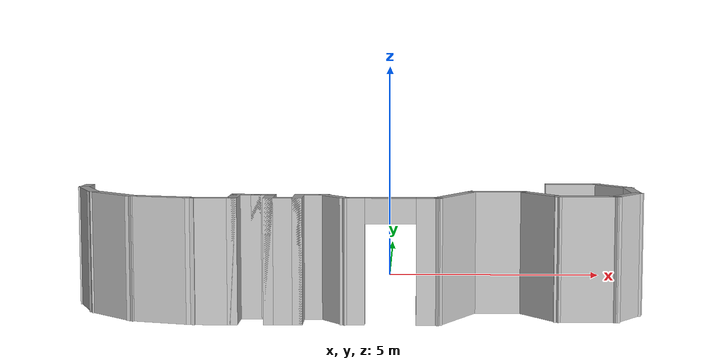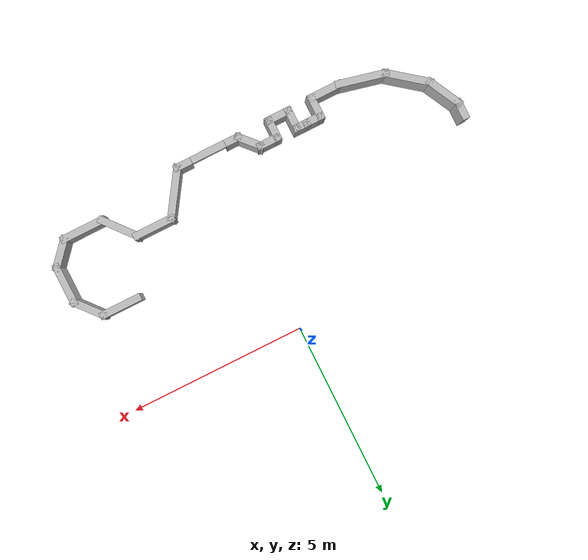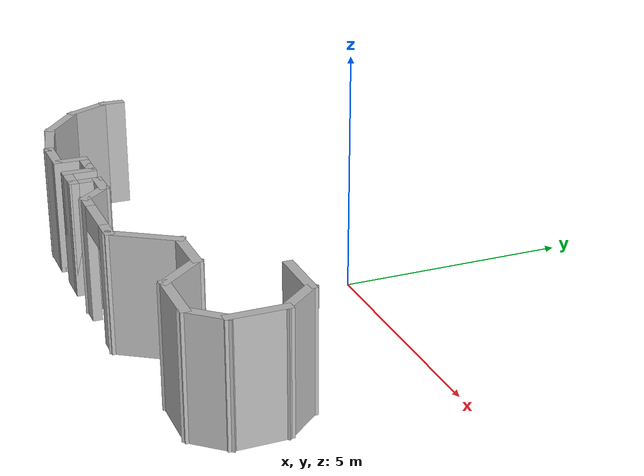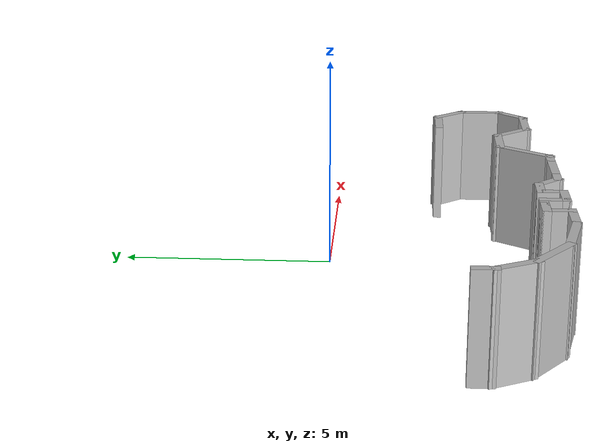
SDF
<?xml version='1.0'?>
<sdf version='1.5'>
  <model name='sample_wall3'>
    <link name='Wall_64'>
      <collision name='Wall_64_Collision'>
        <geometry>
          <box>
            <size>0.58 0.2 2.5</size>
          </box>
        </geometry>
        <pose frame=''>0 0 1.25 0 -0 0</pose>
      </collision>
      <visual name='Wall_64_Visual'>
        <pose frame=''>0 0 1.25 0 -0 0</pose>
        <geometry>
          <box>
            <size>0.58 0.2 2.5</size>
          </box>
        </geometry>
        <material>
          <script>
            <uri>model://sample_wall3/materials/scripts</uri>
            <uri>model://sample_wall3/materials/textures</uri>
            <name>tex/wall</name>
          </script>
        </material>
      </visual>
      <pose frame=''>-6.41 -3.31 0 0 0 -1.5708</pose>
    </link>
    <link name='Wall_65'>
      <collision name='Wall_65_Collision'>
        <geometry>
          <box>
            <size>1.13477 0.2 2.5</size>
          </box>
        </geometry>
        <pose frame=''>0 0 1.25 0 -0 0</pose>
      </collision>
      <visual name='Wall_65_Visual'>
        <pose frame=''>0 0 1.25 0 -0 0</pose>
        <geometry>
          <box>
            <size>1.13477 0.2 2.5</size>
          </box>
        </geometry>
        <material>
          <script>
            <uri>model://sample_wall3/materials/scripts</uri>
            <uri>model://sample_wall3/materials/textures</uri>
            <name>tex/wall</name>
          </script>
        </material>
      </visual>
      <pose frame=''>-6.195 -3.915 0 0 0 -1.0928</pose>
    </link>
    <link name='Wall_66'>
      <collision name='Wall_66_Collision'>
        <geometry>
          <box>
            <size>1.4042 0.2 2.5</size>
          </box>
        </geometry>
        <pose frame=''>0 0 1.25 0 -0 0</pose>
      </collision>
      <visual name='Wall_66_Visual'>
        <pose frame=''>0 0 1.25 0 -0 0</pose>
        <geometry>
          <box>
            <size>1.4042 0.2 2.5</size>
          </box>
        </geometry>
        <material>
          <script>
            <uri>model://sample_wall3/materials/scripts</uri> <uri>model://sample_wall3/materials/textures</uri>
            <name>tex/wall</name>
          </script>
        </material>
      </visual>
      <pose frame=''>-5.505 -4.7 0 0 0 -0.661772</pose>
    </link>
    <link name='Wall_67'>
      <collision name='Wall_67_Collision'>
        <geometry>
          <box>
            <size>1.46372 0.2 2.5</size>
          </box>
        </geometry>
        <pose frame=''>0 0 1.25 0 -0 0</pose>
      </collision>
      <visual name='Wall_67_Visual'>
        <pose frame=''>0 0 1.25 0 -0 0</pose>
        <geometry>
          <box>
            <size>1.46372 0.2 2.5</size>
          </box>
        </geometry>
        <material>
          <script>
            <uri>model://sample_wall3/materials/scripts</uri> <uri>model://sample_wall3/materials/textures</uri>
            <name>tex/wall</name>
          </script>
        </material>
      </visual>
      <pose frame=''>-4.415 -5.215 0 0 0 -0.231544</pose>
    </link>
    <link name='Wall_68'>
      <collision name='Wall_68_Collision'>
        <geometry>
          <box>
            <size>1.01 0.2 2.5</size>
          </box>
        </geometry>
        <pose frame=''>0 0 1.25 0 -0 0</pose>
      </collision>
      <visual name='Wall_68_Visual'>
        <pose frame=''>0 0 1.25 0 -0 0</pose>
        <geometry>
          <box>
            <size>1.01 0.2 2.5</size>
          </box>
        </geometry>
        <material>
          <script>
            <uri>model://sample_wall3/materials/scripts</uri> <uri>model://sample_wall3/materials/textures</uri>
            <name>tex/wall</name>
          </script>
        </material>
      </visual>
      <pose frame=''>-3.395 -5.36 0 0 -0 0</pose>
    </link>
    <link name='Wall_69'>
      <collision name='Wall_69_Collision'>
        <geometry>
          <box>
            <size>0.74 0.2 2.5</size>
          </box>
        </geometry>
        <pose frame=''>0 0 1.25 0 -0 0</pose>
      </collision>
      <visual name='Wall_69_Visual'>
        <pose frame=''>0 0 1.25 0 -0 0</pose>
        <geometry>
          <box>
            <size>0.74 0.2 2.5</size>
          </box>
        </geometry>
        <material>
          <script>
            <uri>model://sample_wall3/materials/scripts</uri> <uri>model://sample_wall3/materials/textures</uri>
            <name>tex/wall</name>
          </script>
        </material>
      </visual>
      <pose frame=''>-2.99 -5.09 0 0 -0 1.5708</pose>
    </link>
    <link name='Wall_70'>
      <collision name='Wall_70_Collision'>
        <geometry>
          <box>
            <size>0.61 0.2 2.5</size>
          </box>
        </geometry>
        <pose frame=''>0 0 1.25 0 -0 0</pose>
      </collision>
      <visual name='Wall_70_Visual'>
        <pose frame=''>0 0 1.25 0 -0 0</pose>
        <geometry>
          <box>
            <size>0.61 0.2 2.5</size>
          </box>
        </geometry>
        <material>
          <script>
            <uri>model://sample_wall3/materials/scripts</uri> <uri>model://sample_wall3/materials/textures</uri>
            <name>tex/wall</name>
          </script>
        </material>
      </visual>
      <pose frame=''>-2.785 -4.82 0 0 -0 0</pose>
    </link>
    <link name='Wall_71'>
      <collision name='Wall_71_Collision'>
        <geometry>
          <box>
            <size>0.49 0.2 2.5</size>
          </box>
        </geometry>
        <pose frame=''>0 0 1.25 0 -0 0</pose>
      </collision>
      <visual name='Wall_71_Visual'>
        <pose frame=''>0 0 1.25 0 -0 0</pose>
        <geometry>
          <box>
            <size>0.49 0.2 2.5</size>
          </box>
        </geometry>
        <material>
          <script>
            <uri>model://sample_wall3/materials/scripts</uri> <uri>model://sample_wall3/materials/textures</uri>
            <name>tex/wall</name>
          </script>
        </material>
      </visual>
      <pose frame=''>-2.435 -4.82 0 0 -0 0</pose>
    </link>
    <link name='Wall_72'>
      <collision name='Wall_72_Collision'>
        <geometry>
          <box>
            <size>0.71 0.2 2.5</size>
          </box>
        </geometry>
        <pose frame=''>0 0 1.25 0 -0 0</pose>
      </collision>
      <visual name='Wall_72_Visual'>
        <pose frame=''>0 0 1.25 0 -0 0</pose>
        <geometry>
          <box>
            <size>0.71 0.2 2.5</size>
          </box>
        </geometry>
        <material>
          <script>
            <uri>model://sample_wall3/materials/scripts</uri> <uri>model://sample_wall3/materials/textures</uri>
            <name>tex/wall</name>
          </script>
        </material>
      </visual>
      <pose frame=''>-2.29 -5.075 0 0 0 -1.5708</pose>
    </link>
    <link name='Wall_73'>
      <collision name='Wall_73_Collision'>
        <geometry>
          <box>
            <size>0.77 0.2 2.5</size>
          </box>
        </geometry>
        <pose frame=''>0 0 1.25 0 -0 0</pose>
      </collision>
      <visual name='Wall_73_Visual'>
        <pose frame=''>0 0 1.25 0 -0 0</pose>
        <geometry>
          <box>
            <size>0.77 0.2 2.5</size>
          </box>
        </geometry>
        <material>
          <script>
            <uri>model://sample_wall3/materials/scripts</uri> <uri>model://sample_wall3/materials/textures</uri>
            <name>tex/wall</name>
          </script>
        </material>
      </visual>
      <pose frame=''>-2.005 -5.33 0 0 -0 0</pose>
    </link>
    <link name='Wall_74'>
      <collision name='Wall_74_Collision'>
        <geometry>
          <box>
            <size>0.7 0.2 2.5</size>
          </box>
        </geometry>
        <pose frame=''>0 0 1.25 0 -0 0</pose>
      </collision>
      <visual name='Wall_74_Visual'>
        <pose frame=''>0 0 1.25 0 -0 0</pose>
        <geometry>
          <box>
            <size>0.7 0.2 2.5</size>
          </box>
        </geometry>
        <material>
          <script>
            <uri>model://sample_wall3/materials/scripts</uri> <uri>model://sample_wall3/materials/textures</uri>
            <name>tex/wall</name>
          </script>
        </material>
      </visual>
      <pose frame=''>-1.72 -5.08 0 0 -0 1.5708</pose>
    </link>
    <link name='Wall_75'>
      <collision name='Wall_75_Collision'>
        <geometry>
          <box>
            <size>0.7 0.2 2.5</size>
          </box>
        </geometry>
        <pose frame=''>0 0 1.25 0 -0 0</pose>
      </collision>
      <visual name='Wall_75_Visual'>
        <pose frame=''>0 0 1.25 0 -0 0</pose>
        <geometry>
          <box>
            <size>0.7 0.2 2.5</size>
          </box>
        </geometry>
        <material>
          <script>
            <uri>model://sample_wall3/materials/scripts</uri> <uri>model://sample_wall3/materials/textures</uri>
            <name>tex/wall</name>
          </script>
        </material>
      </visual>
      <pose frame=''>-1.47 -4.83 0 0 -0 0</pose>
    </link>
    <link name='Wall_76'>
      <collision name='Wall_76_Collision'>
        <geometry>
          <box>
            <size>0.837024 0.2 2.5</size>
          </box>
        </geometry>
        <pose frame=''>0 0 1.25 0 -0 0</pose>
      </collision>
      <visual name='Wall_76_Visual'>
        <pose frame=''>0 0 1.25 0 -0 0</pose>
        <geometry>
          <box>
            <size>0.837024 0.2 2.5</size>
          </box>
        </geometry>
        <material>
          <script>
            <uri>model://sample_wall3/materials/scripts</uri> <uri>model://sample_wall3/materials/textures</uri>
            <name>tex/wall</name>
          </script>
        </material>
      </visual>
      <pose frame=''>-1.005 -5.065 0 0 0 -0.829813</pose>
    </link>
    <link name='Wall_77'>
      <pose frame=''>0.11 -5.3 0 0 -0 0</pose>
      <visual name='Wall_77_Visual_0'>
        <pose frame=''>-0.755 0 1.25 0 -0 0</pose>
        <geometry>
          <box>
            <size>0.49 0.2 2.5</size>
          </box>
        </geometry>
        <material>
          <script>
            <uri>model://sample_wall3/materials/scripts</uri> <uri>model://sample_wall3/materials/textures</uri>
            <name>tex/wall</name>
          </script>
        </material>
      </visual>
      <collision name='Wall_77_Collision_0'>
        <geometry>
          <box>
            <size>0.49 0.2 2.5</size>
          </box>
        </geometry>
        <pose frame=''>-0.755 0 1.25 0 -0 0</pose>
      </collision>
      <visual name='Wall_77_Visual_1'>
        <pose frame=''>0.745 0 1.25 0 -0 0</pose>
        <geometry>
          <box>
            <size>0.51 0.2 2.5</size>
          </box>
        </geometry>
        <material>
          <script>
            <uri>model://sample_wall3/materials/scripts</uri> <uri>model://sample_wall3/materials/textures</uri>
            <name>tex/wall</name>
          </script>
        </material>
      </visual>
      <collision name='Wall_77_Collision_1'>
        <geometry>
          <box>
            <size>0.51 0.2 2.5</size>
          </box>
        </geometry>
        <pose frame=''>0.745 0 1.25 0 -0 0</pose>
      </collision>
      <visual name='Wall_77_Visual_2'>
        <pose frame=''>-0.01 0 2.25 0 -0 0</pose>
        <geometry>
          <box>
            <size>1 0.2 0.5</size>
          </box>
        </geometry>
        <material>
          <script>
            <uri>model://sample_wall3/materials/scripts</uri> <uri>model://sample_wall3/materials/textures</uri>
            <name>tex/wall</name>
          </script>
        </material>
      </visual>
      <collision name='Wall_77_Collision_2'>
        <geometry>
          <box>
            <size>1 0.2 0.5</size>
          </box>
        </geometry>
        <pose frame=''>-0.01 0 2.25 0 -0 0</pose>
      </collision>
    </link>
    <link name='Wall_78'>
      <collision name='Wall_78_Collision'>
        <geometry>
          <box>
            <size>1.55625 0.2 2.5</size>
          </box>
        </geometry>
        <pose frame=''>0 0 1.25 0 -0 0</pose>
      </collision>
      <visual name='Wall_78_Visual'>
        <pose frame=''>0 0 1.25 0 -0 0</pose>
        <geometry>
          <box>
            <size>1.55625 0.2 2.5</size>
          </box>
        </geometry>
        <material>
          <script>
            <uri>model://sample_wall3/materials/scripts</uri> <uri>model://sample_wall3/materials/textures</uri>
            <name>tex/wall</name>
          </script>
        </material>
      </visual>
      <pose frame=''>1.385 -4.735 0 0 -0 0.984839</pose>
    </link>
    <link name='Wall_79'>
      <collision name='Wall_79_Collision'>
        <geometry>
          <box>
            <size>1.21 0.2 2.5</size>
          </box>
        </geometry>
        <pose frame=''>0 0 1.25 0 -0 0</pose>
      </collision>
      <visual name='Wall_79_Visual'>
        <pose frame=''>0 0 1.25 0 -0 0</pose>
        <geometry>
          <box>
            <size>1.21 0.2 2.5</size>
          </box>
        </geometry>
        <material>
          <script>
            <uri>model://sample_wall3/materials/scripts</uri> <uri>model://sample_wall3/materials/textures</uri>
            <name>tex/wall</name>
          </script>
        </material>
      </visual>
      <pose frame=''>2.265 -4.17 0 0 -0 0</pose>
    </link>
    <link name='Wall_80'>
      <collision name='Wall_80_Collision'>
        <geometry>
          <box>
            <size>1.21533 0.2 2.5</size>
          </box>
        </geometry>
        <pose frame=''>0 0 1.25 0 -0 0</pose>
      </collision>
      <visual name='Wall_80_Visual'>
        <pose frame=''>0 0 1.25 0 -0 0</pose>
        <geometry>
          <box>
            <size>1.21533 0.2 2.5</size>
          </box>
        </geometry>
        <material>
          <script>
            <uri>model://sample_wall3/materials/scripts</uri> <uri>model://sample_wall3/materials/textures</uri>
            <name>tex/wall</name>
          </script>
        </material>
      </visual>
      <pose frame=''>3.095 -4.56 0 0 0 -0.876058</pose>
    </link>
    <link name='Wall_81'>
      <collision name='Wall_81_Collision'>
        <geometry>
          <box>
            <size>1.31 0.2 2.5</size>
          </box>
        </geometry>
        <pose frame=''>0 0 1.25 0 -0 0</pose>
      </collision>
      <visual name='Wall_81_Visual'>
        <pose frame=''>0 0 1.25 0 -0 0</pose>
        <geometry>
          <box>
            <size>1.31 0.2 2.5</size>
          </box>
        </geometry>
        <material>
          <script>
            <uri>model://sample_wall3/materials/scripts</uri> <uri>model://sample_wall3/materials/textures</uri>
            <name>tex/wall</name>
          </script>
        </material>
      </visual>
      <pose frame=''>3.975 -4.95 0 0 -0 0</pose>
    </link>
    <link name='Wall_82'>
      <collision name='Wall_82_Collision'>
        <geometry>
          <box>
            <size>0.986448 0.2 2.5</size>
          </box>
        </geometry>
        <pose frame=''>0 0 1.25 0 -0 0</pose>
      </collision>
      <visual name='Wall_82_Visual'>
        <pose frame=''>0 0 1.25 0 -0 0</pose>
        <geometry>
          <box>
            <size>0.986448 0.2 2.5</size>
          </box>
        </geometry>
        <material>
          <script>
            <uri>model://sample_wall3/materials/scripts</uri> <uri>model://sample_wall3/materials/textures</uri>
            <name>tex/wall</name>
          </script>
        </material>
      </visual>
      <pose frame=''>4.79 -4.655 0 0 -0 0.848378</pose>
    </link>
    <link name='Wall_83'>
      <collision name='Wall_83_Collision'>
        <geometry>
          <box>
            <size>1.22 0.2 2.5</size>
          </box>
        </geometry>
        <pose frame=''>0 0 1.25 0 -0 0</pose>
      </collision>
      <visual name='Wall_83_Visual'>
        <pose frame=''>0 0 1.25 0 -0 0</pose>
        <geometry>
          <box>
            <size>1.22 0.2 2.5</size>
          </box>
        </geometry>
        <material>
          <script>
            <uri>model://sample_wall3/materials/scripts</uri> <uri>model://sample_wall3/materials/textures</uri>
            <name>tex/wall</name>
          </script>
        </material>
      </visual>
      <pose frame=''>5.05 -3.85 0 0 -0 1.5708</pose>
    </link>
    <link name='Wall_84'>
      <collision name='Wall_84_Collision'>
        <geometry>
          <box>
            <size>1.05147 0.2 2.5</size>
          </box>
        </geometry>
        <pose frame=''>0 0 1.25 0 -0 0</pose>
      </collision>
      <visual name='Wall_84_Visual'>
        <pose frame=''>0 0 1.25 0 -0 0</pose>
        <geometry>
          <box>
            <size>1.05147 0.2 2.5</size>
          </box>
        </geometry>
        <material>
          <script>
            <uri>model://sample_wall3/materials/scripts</uri> <uri>model://sample_wall3/materials/textures</uri>
            <name>tex/wall</name>
          </script>
        </material>
      </visual>
      <pose frame=''>4.775 -3.015 0 0 -0 2.27305</pose>
    </link>
    <link name='Wall_85'>
      <collision name='Wall_85_Collision'>
        <geometry>
          <box>
            <size>1.2 0.2 2.5</size>
          </box>
        </geometry>
        <pose frame=''>0 0 1.25 0 -0 0</pose>
      </collision>
      <visual name='Wall_85_Visual'>
        <pose frame=''>0 0 1.25 0 -0 0</pose>
        <geometry>
          <box>
            <size>1.2 0.2 2.5</size>
          </box>
        </geometry>
        <material>
          <script>
            <uri>model://sample_wall3/materials/scripts</uri> <uri>model://sample_wall3/materials/textures</uri>
            <name>tex/wall</name>
          </script>
        </material>
      </visual>
      <pose frame=''>4 -2.69 0 0 -0 3.14159</pose>
    </link>
    <static>1</static>
  </model>
</sdf>
